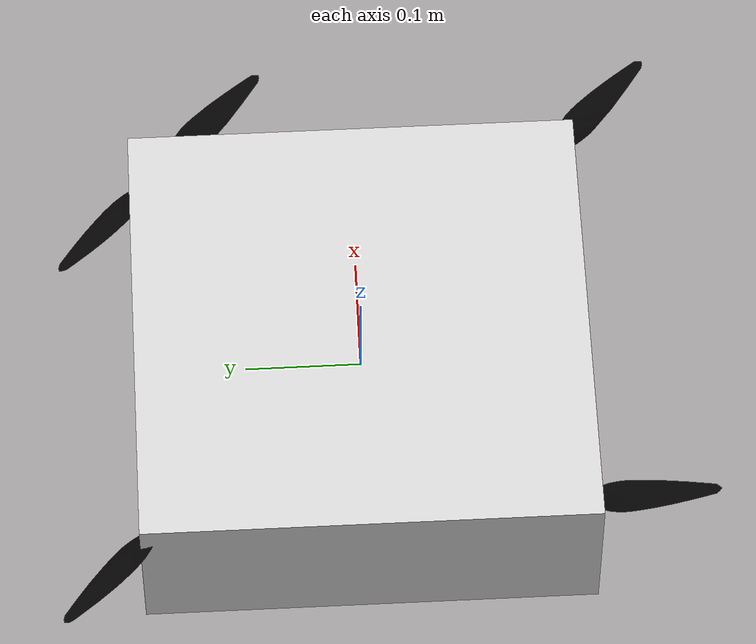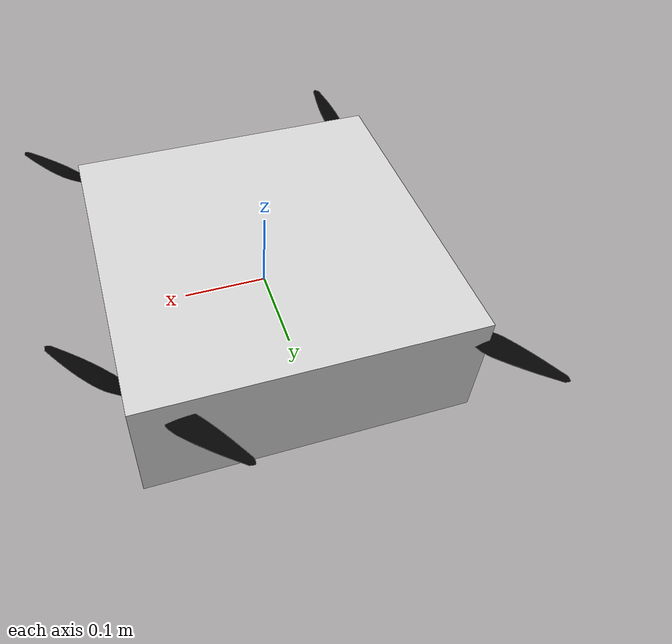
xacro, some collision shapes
<?xml version="1.0"?>
<robot xmlns:xacro="http://www.ros.org/wiki/xacro"  name="dogpa">
  <xacro:property name="package_path" value="$(find uosm_robot_viewer)"/>

  <!--Joint-->
  <joint name="rotor_0" type="revolute">
    <limit lower="-3.14000" upper="3.14000" effort="0.00000" velocity="0.00000"/>
    <origin rpy="0.00000 0.00000 0.00000" xyz="0.17202 -0.17022 0.04861"/>
    <parent link="base_link"/>
    <child link="rotor_0_link"/>
    <axis xyz="0.00000 0.00000 1.00000"/>
  </joint>
  <joint name="rotor_1" type="revolute">
    <limit lower="-3.14000" upper="3.14000" effort="0.00000" velocity="0.00000"/>
    <origin rpy="0.00000 0.00000 0.00000" xyz="-0.16623 0.16971 0.04861"/>
    <parent link="base_link"/>
    <child link="rotor_1_link"/>
    <axis xyz="0.00000 0.00000 1.00000"/>
  </joint>
  <joint name="rotor_2" type="revolute">
    <limit lower="-3.14000" upper="3.14000" effort="0.00000" velocity="0.00000"/>
    <origin rpy="0.00000 0.00000 0.00000" xyz="0.17403 0.16804 0.04890"/>
    <parent link="base_link"/>
    <child link="rotor_2_link"/>
    <axis xyz="0.00000 0.00000 1.00000"/>
  </joint>
  <joint name="rotor_3" type="revolute">
    <limit lower="-3.14000" upper="3.14000" effort="0.00000" velocity="0.00000"/>
    <origin rpy="0.00000 0.00000 0.00000" xyz="-0.16679 -0.16870 0.04890"/>
    <parent link="base_link"/>
    <child link="rotor_3_link"/>
    <axis xyz="0.00000 0.00000 1.00000"/>
  </joint>
  <joint name="zedm_joint" type="fixed">
    <origin rpy="0.00000 0.00000 0.00000" xyz="0.08650 0.00721 -0.03226"/>
    <parent link="base_link"/>
    <child link="zedm_link"/>
  </joint>
  <joint name="zedm_left_joint" type="fixed">
    <origin rpy="0.00000 0.00000 0.00000" xyz="0.02062 0.02432 0.00028"/>
    <parent link="zedm_link"/>
    <child link="zedm_left_link"/>
  </joint>
  <joint name="zedm_right_joint" type="fixed">
    <origin rpy="0.00000 0.00000 0.00000" xyz="0.02062 -0.03861 0.00027"/>
    <parent link="zedm_link"/>
    <child link="zedm_right_link"/>
  </joint>

  <!--Link-->
  <link name="base_link">
    <visual>
      <origin rpy="0.00000 0.00000 0.00000" xyz="0.00009 0.00035 0.00884"/>
      <material name="dogpa"/>
      <geometry>
        <mesh filename="file://${package_path}/urdf/dogpa_meshes/dae/body.dae" scale="1.00000 1.00000 1.00000"/>
      </geometry>
    </visual>
    <collision>
      <origin rpy="0.00000 0.00000 0.00000" xyz="0.00001 -0.00000 -0.00001"/>
      <geometry>
        <box size="0.38959 0.38884 0.14766"/>
      </geometry>
    </collision>
    <inertial>
      <inertia ixx="0.01036" ixy="0.00001" ixz="-0.00031" iyy="0.01044" iyz="-0.00002" izz="0.01785"/>
      <origin rpy="0.00000 0.00000 0.00000" xyz="0.00331 0.00035 0.00980"/>
      <mass value="1.58000"/>
    </inertial>
  </link>
  <link name="rotor_0_link">
    <visual>
      <origin rpy="0.00000 0.00000 0.00000" xyz="0.00000 -0.00000 0.00000"/>
      <material name="prop"/>
      <geometry>
        <mesh filename="file://${package_path}/urdf/dogpa_meshes/dae/prop1.dae" scale="1.00000 1.00000 1.00000"/>
      </geometry>
    </visual>
    <collision>
      <origin rpy="0.00000 0.00000 0.00000" xyz="-0.00000 -0.00000 -0.00000"/>
      <geometry>
        <cylinder length="0.006" radius="0.127"/>
      </geometry>
    </collision>
    <inertial>
      <inertia ixx="0.00009" ixy="0.00000" ixz="0.00000" iyy="0.00009" iyz="0.00000" izz="0.00018"/>
      <origin rpy="0.00000 0.00000 0.00000" xyz="-0.00001 -0.00006 -0.00033"/>
      <mass value="0.01100"/>
    </inertial>
  </link>
  <link name="rotor_1_link">
    <visual>
      <origin rpy="0.00000 0.00000 0.00000" xyz="0.00000 -0.00000 0.00000"/>
      <material name="prop"/>
      <geometry>
        <mesh filename="file://${package_path}/urdf/dogpa_meshes/dae/prop2.dae" scale="1.00000 1.00000 1.00000"/>
      </geometry>
    </visual>
    <collision>
      <origin rpy="0.00000 0.00000 -0.00000" xyz="0.00000 0.00000 0.00000"/>
      <geometry>
        <cylinder length="0.006" radius="0.127"/>
      </geometry>
    </collision>
    <inertial>
      <inertia ixx="0.00009" ixy="0.00000" ixz="0.00000" iyy="0.00009" iyz="0.00000" izz="0.00018"/>
      <origin rpy="0.00000 0.00000 0.00000" xyz="-0.00003 -0.00005 -0.00035"/>
      <mass value="0.01100"/>
    </inertial>
  </link>
  <link name="rotor_2_link">
    <visual>
      <origin rpy="0.00000 0.00000 0.00000" xyz="0.00000 0.00000 0.00000"/>
      <material name="prop"/>
      <geometry>
        <mesh filename="file://${package_path}/urdf/dogpa_meshes/dae/prop3.dae" scale="1.00000 1.00000 1.00000"/>
      </geometry>
    </visual>
    <collision>
      <origin rpy="0.00000 0.00000 0.00000" xyz="0.00000 0.00000 0.00000"/>
      <geometry>
        <cylinder length="0.006" radius="0.127"/>
      </geometry>
    </collision>
    <inertial>
      <inertia ixx="0.00009" ixy="0.00000" ixz="0.00000" iyy="0.00009" iyz="0.00000" izz="0.00018"/>
      <origin rpy="0.00000 0.00000 0.00000" xyz="0.00014 0.00013 0.00035"/>
      <mass value="0.01100"/>
    </inertial>
  </link>
  <link name="rotor_3_link">
    <visual>
      <origin rpy="0.00000 0.00000 0.00000" xyz="0.00000 0.00000 0.00000"/>
      <material name="prop"/>
      <geometry>
        <mesh filename="file://${package_path}/urdf/dogpa_meshes/dae/prop4.dae" scale="1.00000 1.00000 1.00000"/>
      </geometry>
    </visual>
    <collision>
      <origin rpy="0.00000 0.00000 -0.00000" xyz="-0.00000 -0.00000 -0.00000"/>
      <geometry>
        <cylinder length="0.006" radius="0.127"/>
      </geometry>
    </collision>
    <inertial>
      <inertia ixx="0.00009" ixy="0.00000" ixz="0.00000" iyy="0.00009" iyz="0.00000" izz="0.00018"/>
      <origin rpy="0.00000 0.00000 0.00000" xyz="0.00004 -0.00061 0.00036"/>
      <mass value="0.01100"/>
    </inertial>
  </link>
  <link name="zedm_left_link">
    <sensor name="zedm_left_cam" type="camera">
      <origin rpy="3.14159 -1.57080 -0.00000" xyz="0.00000 0.00000 0.00000"/>
      <parent link="zedm_left_link"/>
      <camera>
        <image>
          <width>1080</width>
          <height>720</height>
          <hfov>1.57080</hfov>
        </image>
      </camera>
    </sensor>
    <inertial>
      <inertia ixx="0.00001" ixy="0.00000" ixz="0.00000" iyy="0.00001" iyz="0.00000" izz="0.00001"/>
      <origin rpy="0.00000 0.00000 0.00000" xyz="0.00000 0.00000 0.00000"/>
      <mass value="0.00001"/>
    </inertial>
  </link>
  <link name="zedm_link">
    <visual>
      <origin rpy="0.00000 0.00000 0.00000" xyz="0.00000 0.00000 0.00000"/>
      <material name="zedm"/>
      <geometry>
        <mesh filename="file://${package_path}/urdf/dogpa_meshes/dae/zedm.dae" scale="1.00000 1.00000 1.00000"/>
      </geometry>
    </visual>
    <inertial>
      <inertia ixx="0.00001" ixy="0.00000" ixz="0.00000" iyy="0.00001" iyz="0.00000" izz="0.00001"/>
      <origin rpy="0.00000 0.00000 0.00000" xyz="0.00000 0.00000 0.00000"/>
      <mass value="0.00001"/>
    </inertial>
  </link>
  <link name="zedm_right_link">
    <sensor name="zedm_right_cam" type="camera">
      <origin rpy="3.14159 -1.57080 -0.00000" xyz="0.00000 0.00000 0.00000"/>
      <parent link="zedm_right_link"/>
      <camera>
        <image>
          <width>1080</width>
          <height>720</height>
          <hfov>1.57080</hfov>
        </image>
      </camera>
    </sensor>
    <inertial>
      <inertia ixx="0.00001" ixy="0.00000" ixz="0.00000" iyy="0.00001" iyz="0.00000" izz="0.00001"/>
      <origin rpy="0.00000 0.00000 0.00000" xyz="0.00000 0.00000 0.00000"/>
      <mass value="0.00001"/>
    </inertial>
  </link>
  <material name="prop">
    <color rgba="0.00000 0.00000 0.00000 1.00000"/>
  </material>
  <material name="dogpa">
    <texture filename="file://${package_path}/urdf/dogpa_meshes/dae/dogpa_albedo.png"/>
    <color rgba="0.80000 0.80000 0.80000 1.00000"/>
  </material>
  <material name="zedm">
    <color rgba="0.00000 0.00000 0.00000 1.00000"/>
  </material>
</robot>
